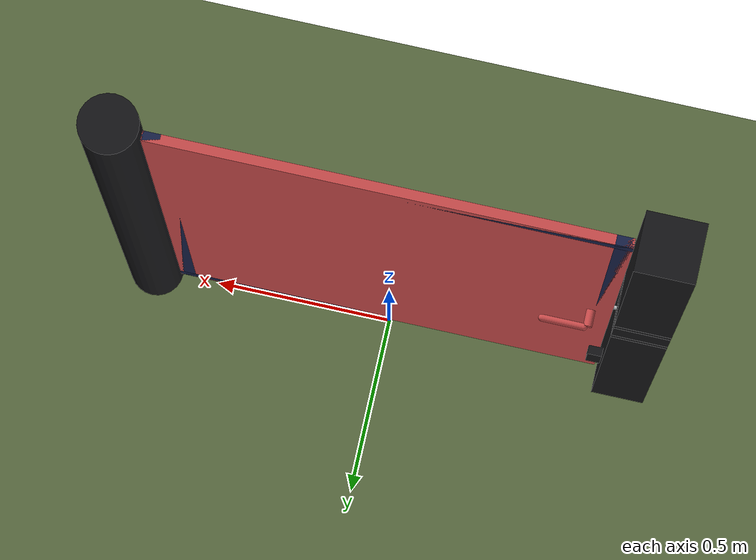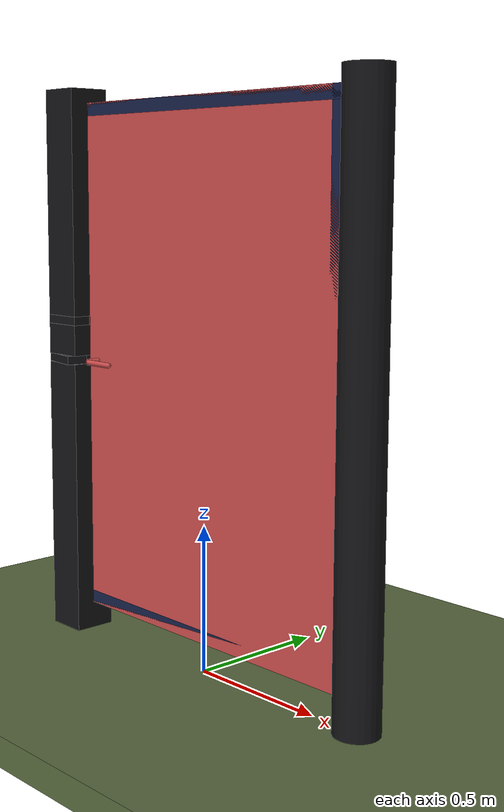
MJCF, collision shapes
<?xml version="1.0" ?>
<mujoco model="db0709_gate_swing_minimal">
  <compiler angle="radian" meshdir="../../hardware" texturedir="../../textures" autolimits="true" inertiafromgeom="false"/>
  <option timestep="0.002" integrator="implicitfast" cone="elliptic" impratio="10" noslip_iterations="3">
    <flag multiccd="enable"/>
  </option>
  <size memory="16M"/>
  <default>
    <geom condim="4" solref="0.005 1" solimp="0.95 0.99 0.001"/>
    <joint solreflimit="0.005 1" solimplimit="0.95 0.99 0.001"/>
    <tendon solreflimit="0.005 1"/>
    <equality solref="0.002 1"/>
  </default>
  <visual>
    <headlight ambient="0.4 0.4 0.4" diffuse="0.7 0.7 0.7" specular="0.2 0.2 0.2"/>
    <quality shadowsize="4096"/>
    <map znear="0.01" zfar="60"/>
  </visual>
  <asset>
    <mesh name="lever_f913fc5b7b" file="lever_f913fc5b7b.obj"/>
    <material name="mat_floor" rgba="0.35 0.42 0.25 1" specular="0.2" shininess="0.15" reflectance="0"/>
    <material name="mat_wall" rgba="0.78 0.76 0.7 1" specular="0.2" shininess="0.1" reflectance="0"/>
    <material name="mat_leaf" rgba="0.09 0.13 0.28 1" specular="0.23" shininess="0.31" reflectance="0.02"/>
    <material name="mat_hinge" rgba="0.65 0.66 0.68 1" specular="0.74" shininess="0.5" reflectance="0.36"/>
    <material name="mat_op_stainless" rgba="0.75 0.76 0.77 1" specular="0.8" shininess="0.65" reflectance="0.4"/>
    <material name="mat_trim" rgba="0.85 0.66 0.3 1" specular="0.8" shininess="0.75" reflectance="0.4"/>
    <material name="mat_bolt" rgba="0.75 0.76 0.77 1" specular="0.8" shininess="0.65" reflectance="0.4"/>
    <material name="mat_deadbolt" rgba="0.85 0.66 0.3 1" specular="0.8" shininess="0.75" reflectance="0.4"/>
    <material name="mat_frame" rgba="0.08 0.08 0.09 1" specular="0.56" shininess="0.25" reflectance="0.24"/>
    <texture name="skybox" type="skybox" builtin="gradient" rgb1="0.6 0.7 0.85" rgb2="0.9 0.92 0.95" width="256" height="256"/>
  </asset>
  <worldbody>
    <light name="sun" pos="1.5 -2.5 4" dir="-0.3 0.5 -0.8" directional="true" diffuse="0.8 0.8 0.8" specular="0.3 0.3 0.3" castshadow="true"/>
    <light name="fill" pos="-1.5 2.5 3" dir="0.3 -0.5 -0.7" directional="true" diffuse="0.35 0.35 0.4" castshadow="false"/>
    <camera name="robot_view" pos="0 -2.33125 1.56275" xyaxes="1 0 0 0 0.26963 0.962964" fovy="52"/>
    <camera name="far_view" pos="0 2.33125 1.56275" xyaxes="-1 0 0 0 -0.26963 0.962964" fovy="52"/>
    <camera name="iso" pos="-1.77175 -1.95825 1.93575" xyaxes="0.741536 -0.670913 0 0.242917 0.268487 0.932151" fovy="46"/>
    <camera name="detail_handle" pos="-0.258 -0.8675 1.28" xyaxes="0.97561 0.219512 0 -0.070934 0.315262 0.94635" fovy="38"/>
    <geom name="floor" type="box" size="6 6 0.05" pos="0 0 -0.05" material="mat_floor" group="0" contype="1" conaffinity="1" friction="0.8 0.005 0.0001" density="2400"/>
    <geom name="post_hinge" type="cylinder" size="0.075 0.975" pos="0.681 0 0.975" material="mat_frame" group="0" contype="1" conaffinity="1" friction="0.6 0.005 0.0001" density="800"/>
    <geom name="post_1000_wall_n" type="box" size="0.075 0.03425 0.015" pos="-0.681 0.04075 1" material="mat_frame" group="0" contype="1" conaffinity="1" friction="0.6 0.005 0.0001" density="800"/>
    <geom name="post_1000_wall_p" type="box" size="0.075 0.008 0.015" pos="-0.681 -0.0145 1" material="mat_frame" group="0" contype="1" conaffinity="1" friction="0.6 0.005 0.0001" density="800"/>
    <geom name="post_1000_ramp" type="box" size="0.075 0.037018 0.015" pos="-0.686945 -0.043555 1" quat="0.994802 0 0 -0.101832" material="mat_frame" group="0" contype="1" conaffinity="1" friction="0.12 0.005 0.0001" density="800"/>
    <geom name="post_1000_back" type="box" size="0.066 0.0065 0.015" pos="-0.69 0 1" material="mat_frame" group="0" contype="1" conaffinity="1" friction="0.6 0.005 0.0001" density="800"/>
    <geom name="post_1140_wall_n" type="box" size="0.075 0.03275 0.0155" pos="-0.681 0.04225 1.14" material="mat_frame" group="0" contype="1" conaffinity="1" friction="0.6 0.005 0.0001" density="800"/>
    <geom name="post_1140_wall_p" type="box" size="0.075 0.03275 0.0155" pos="-0.681 -0.04225 1.14" material="mat_frame" group="0" contype="1" conaffinity="1" friction="0.6 0.005 0.0001" density="800"/>
    <geom name="post_1140_back" type="box" size="0.0603 0.0095 0.0155" pos="-0.6957 0 1.14" material="mat_frame" group="0" contype="1" conaffinity="1" friction="0.6 0.005 0.0001" density="800"/>
    <geom name="post_latch_0" type="box" size="0.075 0.075 0.4925" pos="-0.681 0 0.4925" material="mat_frame" group="0" contype="1" conaffinity="1" friction="0.6 0.005 0.0001" density="800"/>
    <geom name="post_latch_1" type="box" size="0.075 0.075 0.05475" pos="-0.681 0 1.06975" material="mat_frame" group="0" contype="1" conaffinity="1" friction="0.6 0.005 0.0001" density="800"/>
    <geom name="post_latch_2" type="box" size="0.075 0.075 0.39725" pos="-0.681 0 1.55275" material="mat_frame" group="0" contype="1" conaffinity="1" friction="0.6 0.005 0.0001" density="800"/>
    <geom name="gate_stop" type="box" size="0.02 0.012 0.06" pos="-0.586 0.0245 0.35" material="mat_frame" group="0" contype="1" conaffinity="1" friction="0.6 0.005 0.0001" density="800"/>
    <site name="approach_point" pos="0 -1.5 0" quat="1 0 0 0" size="0.05" rgba="0.2 0.9 0.2 0.5" group="4"/>
    <site name="goal_point" pos="0 1.5 0" quat="1 0 0 0" size="0.05" rgba="0.2 0.9 0.2 0.5" group="4"/>
    <site name="door_plane_center" pos="0 0 0.91" quat="1 0 0 0" size="0.02" rgba="0.2 0.9 0.2 0.5" group="4"/>
    <body name="leaf" pos="0.606 0 0">
      <inertial pos="-0.603 0 1" mass="67.524702" quat="-0.5 -0.5 -0.5 0.5" diaginertia="8.107443821 18.236688764 26.337098761"/>
      <joint name="leaf_hinge" type="hinge" axis="0 0 1" pos="-0.003 -0.05 0" limited="true" range="0 1.570796" damping="8.674086" frictionloss="34.779755" stiffness="5" springref="-9.042736" armature="0.02"/>
      <geom name="leaf_slab_col" type="box" size="0.6 0.0125 0.9" pos="-0.603 0 1" material="mat_leaf" group="3" contype="1" conaffinity="1" rgba="0.8 0.3 0.3 0.25" friction="0.45 0.005 0.0001" density="1"/>
      <geom name="leaf_rail_b" type="box" size="0.6 0.0125 0.0225" pos="-0.603 0 0.1225" material="mat_leaf" group="1" contype="0" conaffinity="0" density="1"/>
      <geom name="leaf_rail_t" type="box" size="0.6 0.0125 0.0225" pos="-0.603 0 1.8775" material="mat_leaf" group="1" contype="0" conaffinity="0" density="1"/>
      <geom name="leaf_stile_h" type="box" size="0.0225 0.0125 0.9" pos="-0.0255 0 1" material="mat_leaf" group="1" contype="0" conaffinity="0" density="1"/>
      <geom name="leaf_stile_l" type="box" size="0.0225 0.0125 0.9" pos="-1.1805 0 1" material="mat_leaf" group="1" contype="0" conaffinity="0" density="1"/>
      <site name="leaf_edge_mid" pos="-1.203 0 0.9" quat="1 0 0 0" size="0.02" rgba="0.2 0.9 0.2 0.5" group="4"/>
      <body name="leaf_handle" pos="-1.148 0 1">
        <inertial pos="0.0423 0 0" mass="0.712286" quat="0.707107 0 0 -0.707107" diaginertia="0.001444644 0.002597697 0.004003972"/>
        <joint name="leaf_handle_hinge" type="hinge" axis="0 1 0" limited="true" range="0 0.65" damping="0.225565" frictionloss="0.051863" stiffness="1" springref="-0.503022" armature="0.01"/>
        <geom name="leaf_handle_lever_n" type="mesh" mesh="lever_f913fc5b7b" pos="0 -0.0125 0" quat="0 0 -0.707107 0.707107" material="mat_op_stainless" group="1" contype="0" conaffinity="0" density="3000"/>
        <geom name="leaf_handle_lever_col_n" type="capsule" size="0.0095 0.0555" pos="0.065 -0.0675 0" quat="0.707107 0 0.707107 0" material="mat_op_stainless" group="3" contype="1" conaffinity="1" rgba="0.8 0.3 0.3 0.25" friction="0.7 0.01 0.0001" density="3000"/>
        <geom name="leaf_handle_hub_col_n" type="cylinder" size="0.012 0.022" pos="0 -0.0425 0" quat="0.707107 -0.707107 0 0" material="mat_op_stainless" group="3" contype="1" conaffinity="1" rgba="0.8 0.3 0.3 0.25" friction="0.6 0.005 0.0001" density="3000"/>
        <geom name="leaf_handle_lever_p" type="mesh" mesh="lever_f913fc5b7b" pos="0 0.0125 0" quat="0 0 0.707107 0.707107" material="mat_op_stainless" group="1" contype="0" conaffinity="0" density="3000"/>
        <geom name="leaf_handle_lever_col_p" type="capsule" size="0.0095 0.0555" pos="0.065 0.0675 0" quat="0.707107 0 0.707107 0" material="mat_op_stainless" group="3" contype="1" conaffinity="1" rgba="0.8 0.3 0.3 0.25" friction="0.7 0.01 0.0001" density="3000"/>
        <geom name="leaf_handle_hub_col_p" type="cylinder" size="0.012 0.022" pos="0 0.0425 0" quat="0.707107 -0.707107 0 0" material="mat_op_stainless" group="3" contype="1" conaffinity="1" rgba="0.8 0.3 0.3 0.25" friction="0.6 0.005 0.0001" density="3000"/>
        <site name="leaf_handle_grip_n" pos="0.104 -0.0675 0" quat="1 0 0 0" size="0.012" rgba="0.2 0.9 0.2 0.5" group="4"/>
        <site name="leaf_handle_grip_p" pos="0.104 0.0675 0" quat="1 0 0 0" size="0.012" rgba="0.2 0.9 0.2 0.5" group="4"/>
      </body>
      <body name="leaf_latch_bolt" pos="-1.203 0 1">
        <inertial pos="0.008 0 0" mass="0.027149" quat="0 0 -0.707107 0.707107" diaginertia="0.000000328 0.000003943 0.000003943"/>
        <joint name="leaf_latch_bolt_slide" type="slide" axis="1 0 0" limited="true" range="0 0.014" damping="2" frictionloss="0.3" stiffness="400" springref="-0.01" armature="0.1"/>
        <geom name="leaf_latch_bolt_capsule" type="capsule" size="0.005 0.017" pos="0.008 0 0" quat="0.707107 0 -0.707107 0" material="mat_bolt" group="0" contype="1" conaffinity="1" friction="0.2 0.005 0.0001" density="8500"/>
      </body>
    </body>
  </worldbody>
  <tendon>
    <fixed name="leaf_latch_bolt_coupling" limited="true" range="0 10">
      <joint joint="leaf_latch_bolt_slide" coef="1"/>
      <joint joint="leaf_handle_hinge" coef="-0.022951"/>
    </fixed>
  </tendon>
  <sensor>
    <jointpos name="leaf_hinge_pos" joint="leaf_hinge"/>
    <jointvel name="leaf_hinge_vel" joint="leaf_hinge"/>
    <jointpos name="leaf_handle_hinge_pos" joint="leaf_handle_hinge"/>
    <jointvel name="leaf_handle_hinge_vel" joint="leaf_handle_hinge"/>
    <jointpos name="leaf_latch_bolt_slide_pos" joint="leaf_latch_bolt_slide"/>
    <jointvel name="leaf_latch_bolt_slide_vel" joint="leaf_latch_bolt_slide"/>
  </sensor>
</mujoco>
